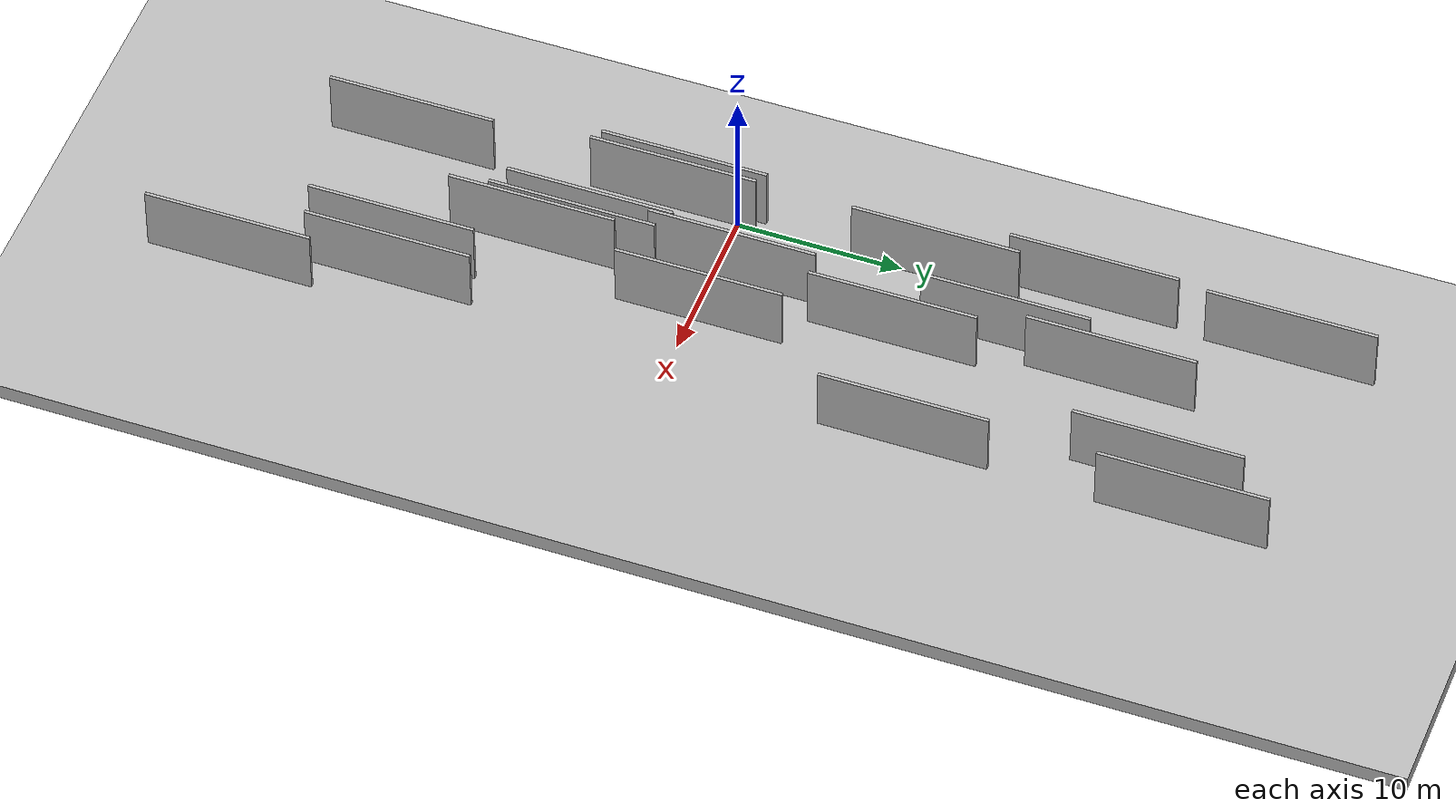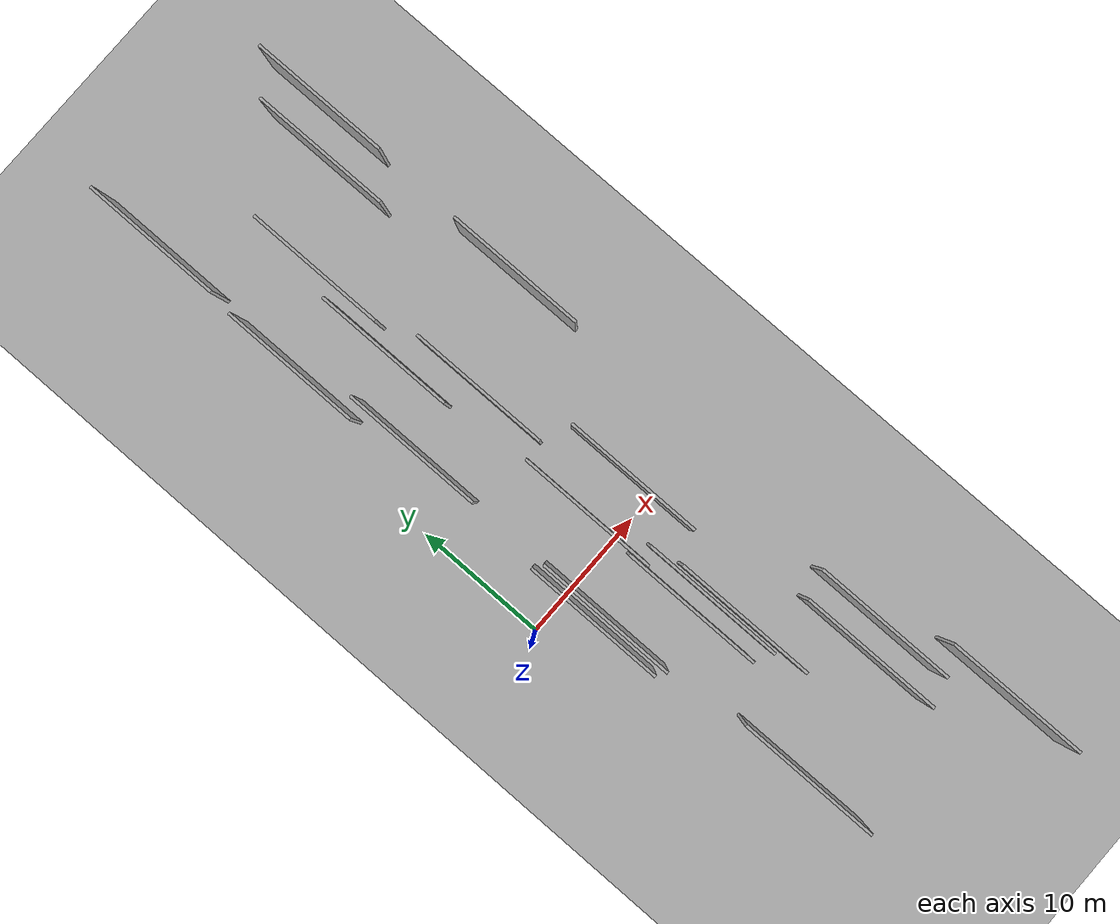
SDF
<?xml version="1.0" encoding="utf-8"?>

<sdf version="1.6">

   <world name="default">

      <gui fullscreen="0">

         <camera name="user_camera">

            <pose>-15 0 4.57585 0 0 0</pose>

            <view_controller>orbit</view_controller>

         </camera>

      </gui>

      <scene>

         <sky>

           <clouds>

             <speed>12</speed>

           </clouds>

         </sky>

         <ambient>0.4 0.4 0.4 1</ambient>

         <background>0.7 0.7 0.7 1</background>

         <shadows>1</shadows>

      </scene>

      <gravity>0 0 -9.8066</gravity>

      <magnetic_field>6e-06 2.3e-05 -4.2e-05</magnetic_field>

      <physics default="0" name="default_physics" type="ode">

         <ode>

            <solver>

               <type>quick</type>

               <iters>10</iters>

               <sor>1.0</sor>

               <use_dynamic_moi_rescaling>0</use_dynamic_moi_rescaling>

            </solver>

            <constraints>

               <cfm>0</cfm>

               <erp>0.2</erp>

               <contact_max_correcting_vel>100</contact_max_correcting_vel>

               <contact_surface_layer>0.001</contact_surface_layer>

            </constraints>

         </ode>

         <max_step_size>0.004</max_step_size>

         <real_time_factor>1</real_time_factor>

         <real_time_update_rate>250</real_time_update_rate>

      </physics>

      <light name="sun" type="directional">

         <cast_shadows>1</cast_shadows>

         <pose>0 0 10 0 0 0</pose>

         <diffuse>0.8 0.8 0.8 1</diffuse>

         <specular>0.2 0.2 0.2 1</specular>

         <attenuation>

            <range>1000</range>

            <constant>0.9</constant>

            <linear>0.01</linear>

            <quadratic>0.001</quadratic>

         </attenuation>

         <direction>-0.5 0.1 -0.9</direction>

      </light>

      <include>

         <name>ground_plane_1</name>

         <uri>model://HANNAS_ground_plane</uri>

         <pose>0 0 0  0 0 0</pose>

      </include>

      <include>

         <name>ground_plane_2</name>

         <uri>model://HANNAS_ground_plane</uri>

         <pose>100 0 0  0 0 0</pose>

      </include>

      <model name="HANNAS_wall_1">

         <static>1</static>

         <pose frame="">9.7893 12.7815 5.0 0.000000 0.000000 1.570796</pose>

         <link name="link">

            <pose frame="">0 0 2.00 0 0 0</pose>

            <collision name="collision">

               <geometry>

                  <box>

                     <size>10.00 0.2 4.00</size>

                  </box>

               </geometry>

               <max_contacts>10</max_contacts>

               <surface>

                  <contact>

                     <ode/>

                  </contact>

                  <bounce/>

                  <friction>

                     <torsional>

                        <ode/>

                     </torsional>

                     <ode/>

                  </friction>

               </surface>

            </collision>

            <visual name="visual">

               <cast_shadows>0</cast_shadows>

               <geometry>

                  <box>

                     <size>10.00 0.2 4.00</size>

                  </box>

               </geometry>

               <material>

                  <script>

                     <uri>model://HANNAS_wall/materials/scripts</uri>

                     <uri>model://HANNAS_wall/materials/textures</uri>

                     <name>vrc/HANNAS_wall</name>

                  </script>

               </material>

            </visual>

            <self_collide>0</self_collide>

            <enable_wind>0</enable_wind>

            <kinematic>0</kinematic>

         </link>

      </model>

      <model name="HANNAS_wall_2">

         <static>1</static>

         <pose frame="">9.3896 -6.5230 5.0 0.000000 0.000000 1.570796</pose>

         <link name="link">

            <pose frame="">0 0 2.00 0 0 0</pose>

            <collision name="collision">

               <geometry>

                  <box>

                     <size>10.00 0.2 4.00</size>

                  </box>

               </geometry>

               <max_contacts>10</max_contacts>

               <surface>

                  <contact>

                     <ode/>

                  </contact>

                  <bounce/>

                  <friction>

                     <torsional>

                        <ode/>

                     </torsional>

                     <ode/>

                  </friction>

               </surface>

            </collision>

            <visual name="visual">

               <cast_shadows>0</cast_shadows>

               <geometry>

                  <box>

                     <size>10.00 0.2 4.00</size>

                  </box>

               </geometry>

               <material>

                  <script>

                     <uri>model://HANNAS_wall/materials/scripts</uri>

                     <uri>model://HANNAS_wall/materials/textures</uri>

                     <name>vrc/HANNAS_wall</name>

                  </script>

               </material>

            </visual>

            <self_collide>0</self_collide>

            <enable_wind>0</enable_wind>

            <kinematic>0</kinematic>

         </link>

      </model>

      <model name="HANNAS_wall_3">

         <static>1</static>

         <pose frame="">3.4801 34.1478 5.0 0.000000 0.000000 1.570796</pose>

         <link name="link">

            <pose frame="">0 0 2.00 0 0 0</pose>

            <collision name="collision">

               <geometry>

                  <box>

                     <size>10.00 0.2 4.00</size>

                  </box>

               </geometry>

               <max_contacts>10</max_contacts>

               <surface>

                  <contact>

                     <ode/>

                  </contact>

                  <bounce/>

                  <friction>

                     <torsional>

                        <ode/>

                     </torsional>

                     <ode/>

                  </friction>

               </surface>

            </collision>

            <visual name="visual">

               <cast_shadows>0</cast_shadows>

               <geometry>

                  <box>

                     <size>10.00 0.2 4.00</size>

                  </box>

               </geometry>

               <material>

                  <script>

                     <uri>model://HANNAS_wall/materials/scripts</uri>

                     <uri>model://HANNAS_wall/materials/textures</uri>

                     <name>vrc/HANNAS_wall</name>

                  </script>

               </material>

            </visual>

            <self_collide>0</self_collide>

            <enable_wind>0</enable_wind>

            <kinematic>0</kinematic>

         </link>

      </model>

      <model name="HANNAS_wall_4">

         <static>1</static>

         <pose frame="">3.6073 -1.9152 5.0 0.000000 0.000000 1.570796</pose>

         <link name="link">

            <pose frame="">0 0 2.00 0 0 0</pose>

            <collision name="collision">

               <geometry>

                  <box>

                     <size>10.00 0.2 4.00</size>

                  </box>

               </geometry>

               <max_contacts>10</max_contacts>

               <surface>

                  <contact>

                     <ode/>

                  </contact>

                  <bounce/>

                  <friction>

                     <torsional>

                        <ode/>

                     </torsional>

                     <ode/>

                  </friction>

               </surface>

            </collision>

            <visual name="visual">

               <cast_shadows>0</cast_shadows>

               <geometry>

                  <box>

                     <size>10.00 0.2 4.00</size>

                  </box>

               </geometry>

               <material>

                  <script>

                     <uri>model://HANNAS_wall/materials/scripts</uri>

                     <uri>model://HANNAS_wall/materials/textures</uri>

                     <name>vrc/HANNAS_wall</name>

                  </script>

               </material>

            </visual>

            <self_collide>0</self_collide>

            <enable_wind>0</enable_wind>

            <kinematic>0</kinematic>

         </link>

      </model>

      <model name="HANNAS_wall_5">

         <static>1</static>

         <pose frame="">8.4005 2.7247 5.0 0.000000 0.000000 1.570796</pose>

         <link name="link">

            <pose frame="">0 0 2.00 0 0 0</pose>

            <collision name="collision">

               <geometry>

                  <box>

                     <size>10.00 0.2 4.00</size>

                  </box>

               </geometry>

               <max_contacts>10</max_contacts>

               <surface>

                  <contact>

                     <ode/>

                  </contact>

                  <bounce/>

                  <friction>

                     <torsional>

                        <ode/>

                     </torsional>

                     <ode/>

                  </friction>

               </surface>

            </collision>

            <visual name="visual">

               <cast_shadows>0</cast_shadows>

               <geometry>

                  <box>

                     <size>10.00 0.2 4.00</size>

                  </box>

               </geometry>

               <material>

                  <script>

                     <uri>model://HANNAS_wall/materials/scripts</uri>

                     <uri>model://HANNAS_wall/materials/textures</uri>

                     <name>vrc/HANNAS_wall</name>

                  </script>

               </material>

            </visual>

            <self_collide>0</self_collide>

            <enable_wind>0</enable_wind>

            <kinematic>0</kinematic>

         </link>

      </model>

      <model name="HANNAS_wall_6">

         <static>1</static>

         <pose frame="">16.9744 32.1979 5.0 0.000000 0.000000 1.570796</pose>

         <link name="link">

            <pose frame="">0 0 2.00 0 0 0</pose>

            <collision name="collision">

               <geometry>

                  <box>

                     <size>10.00 0.2 4.00</size>

                  </box>

               </geometry>

               <max_contacts>10</max_contacts>

               <surface>

                  <contact>

                     <ode/>

                  </contact>

                  <bounce/>

                  <friction>

                     <torsional>

                        <ode/>

                     </torsional>

                     <ode/>

                  </friction>

               </surface>

            </collision>

            <visual name="visual">

               <cast_shadows>0</cast_shadows>

               <geometry>

                  <box>

                     <size>10.00 0.2 4.00</size>

                  </box>

               </geometry>

               <material>

                  <script>

                     <uri>model://HANNAS_wall/materials/scripts</uri>

                     <uri>model://HANNAS_wall/materials/textures</uri>

                     <name>vrc/HANNAS_wall</name>

                  </script>

               </material>

            </visual>

            <self_collide>0</self_collide>

            <enable_wind>0</enable_wind>

            <kinematic>0</kinematic>

         </link>

      </model>

      <model name="HANNAS_wall_7">

         <static>1</static>

         <pose frame="">3.2066 22.4412 5.0 0.000000 0.000000 1.570796</pose>

         <link name="link">

            <pose frame="">0 0 2.00 0 0 0</pose>

            <collision name="collision">

               <geometry>

                  <box>

                     <size>10.00 0.2 4.00</size>

                  </box>

               </geometry>

               <max_contacts>10</max_contacts>

               <surface>

                  <contact>

                     <ode/>

                  </contact>

                  <bounce/>

                  <friction>

                     <torsional>

                        <ode/>

                     </torsional>

                     <ode/>

                  </friction>

               </surface>

            </collision>

            <visual name="visual">

               <cast_shadows>0</cast_shadows>

               <geometry>

                  <box>

                     <size>10.00 0.2 4.00</size>

                  </box>

               </geometry>

               <material>

                  <script>

                     <uri>model://HANNAS_wall/materials/scripts</uri>

                     <uri>model://HANNAS_wall/materials/textures</uri>

                     <name>vrc/HANNAS_wall</name>

                  </script>

               </material>

            </visual>

            <self_collide>0</self_collide>

            <enable_wind>0</enable_wind>

            <kinematic>0</kinematic>

         </link>

      </model>

      <model name="HANNAS_wall_8">

         <static>1</static>

         <pose frame="">9.7941 -8.7824 5.0 0.000000 0.000000 1.570796</pose>

         <link name="link">

            <pose frame="">0 0 2.00 0 0 0</pose>

            <collision name="collision">

               <geometry>

                  <box>

                     <size>10.00 0.2 4.00</size>

                  </box>

               </geometry>

               <max_contacts>10</max_contacts>

               <surface>

                  <contact>

                     <ode/>

                  </contact>

                  <bounce/>

                  <friction>

                     <torsional>

                        <ode/>

                     </torsional>

                     <ode/>

                  </friction>

               </surface>

            </collision>

            <visual name="visual">

               <cast_shadows>0</cast_shadows>

               <geometry>

                  <box>

                     <size>10.00 0.2 4.00</size>

                  </box>

               </geometry>

               <material>

                  <script>

                     <uri>model://HANNAS_wall/materials/scripts</uri>

                     <uri>model://HANNAS_wall/materials/textures</uri>

                     <name>vrc/HANNAS_wall</name>

                  </script>

               </material>

            </visual>

            <self_collide>0</self_collide>

            <enable_wind>0</enable_wind>

            <kinematic>0</kinematic>

         </link>

      </model>

      <model name="HANNAS_wall_9">

         <static>1</static>

         <pose frame="">14.5233 29.9534 5.0 0.000000 0.000000 1.570796</pose>

         <link name="link">

            <pose frame="">0 0 2.00 0 0 0</pose>

            <collision name="collision">

               <geometry>

                  <box>

                     <size>10.00 0.2 4.00</size>

                  </box>

               </geometry>

               <max_contacts>10</max_contacts>

               <surface>

                  <contact>

                     <ode/>

                  </contact>

                  <bounce/>

                  <friction>

                     <torsional>

                        <ode/>

                     </torsional>

                     <ode/>

                  </friction>

               </surface>

            </collision>

            <visual name="visual">

               <cast_shadows>0</cast_shadows>

               <geometry>

                  <box>

                     <size>10.00 0.2 4.00</size>

                  </box>

               </geometry>

               <material>

                  <script>

                     <uri>model://HANNAS_wall/materials/scripts</uri>

                     <uri>model://HANNAS_wall/materials/textures</uri>

                     <name>vrc/HANNAS_wall</name>

                  </script>

               </material>

            </visual>

            <self_collide>0</self_collide>

            <enable_wind>0</enable_wind>

            <kinematic>0</kinematic>

         </link>

      </model>

      <model name="HANNAS_wall_10">

         <static>1</static>

         <pose frame="">16.9770 -24.3472 5.0 0.000000 0.000000 1.570796</pose>

         <link name="link">

            <pose frame="">0 0 2.00 0 0 0</pose>

            <collision name="collision">

               <geometry>

                  <box>

                     <size>10.00 0.2 4.00</size>

                  </box>

               </geometry>

               <max_contacts>10</max_contacts>

               <surface>

                  <contact>

                     <ode/>

                  </contact>

                  <bounce/>

                  <friction>

                     <torsional>

                        <ode/>

                     </torsional>

                     <ode/>

                  </friction>

               </surface>

            </collision>

            <visual name="visual">

               <cast_shadows>0</cast_shadows>

               <geometry>

                  <box>

                     <size>10.00 0.2 4.00</size>

                  </box>

               </geometry>

               <material>

                  <script>

                     <uri>model://HANNAS_wall/materials/scripts</uri>

                     <uri>model://HANNAS_wall/materials/textures</uri>

                     <name>vrc/HANNAS_wall</name>

                  </script>

               </material>

            </visual>

            <self_collide>0</self_collide>

            <enable_wind>0</enable_wind>

            <kinematic>0</kinematic>

         </link>

      </model>

      <model name="HANNAS_wall_11">

         <static>1</static>

         <pose frame="">15.1796 -15.4007 5.0 0.000000 0.000000 1.570796</pose>

         <link name="link">

            <pose frame="">0 0 2.00 0 0 0</pose>

            <collision name="collision">

               <geometry>

                  <box>

                     <size>10.00 0.2 4.00</size>

                  </box>

               </geometry>

               <max_contacts>10</max_contacts>

               <surface>

                  <contact>

                     <ode/>

                  </contact>

                  <bounce/>

                  <friction>

                     <torsional>

                        <ode/>

                     </torsional>

                     <ode/>

                  </friction>

               </surface>

            </collision>

            <visual name="visual">

               <cast_shadows>0</cast_shadows>

               <geometry>

                  <box>

                     <size>10.00 0.2 4.00</size>

                  </box>

               </geometry>

               <material>

                  <script>

                     <uri>model://HANNAS_wall/materials/scripts</uri>

                     <uri>model://HANNAS_wall/materials/textures</uri>

                     <name>vrc/HANNAS_wall</name>

                  </script>

               </material>

            </visual>

            <self_collide>0</self_collide>

            <enable_wind>0</enable_wind>

            <kinematic>0</kinematic>

         </link>

      </model>

      <model name="HANNAS_wall_12">

         <static>1</static>

         <pose frame="">8.7573 25.3072 5.0 0.000000 0.000000 1.570796</pose>

         <link name="link">

            <pose frame="">0 0 2.00 0 0 0</pose>

            <collision name="collision">

               <geometry>

                  <box>

                     <size>10.00 0.2 4.00</size>

                  </box>

               </geometry>

               <max_contacts>10</max_contacts>

               <surface>

                  <contact>

                     <ode/>

                  </contact>

                  <bounce/>

                  <friction>

                     <torsional>

                        <ode/>

                     </torsional>

                     <ode/>

                  </friction>

               </surface>

            </collision>

            <visual name="visual">

               <cast_shadows>0</cast_shadows>

               <geometry>

                  <box>

                     <size>10.00 0.2 4.00</size>

                  </box>

               </geometry>

               <material>

                  <script>

                     <uri>model://HANNAS_wall/materials/scripts</uri>

                     <uri>model://HANNAS_wall/materials/textures</uri>

                     <name>vrc/HANNAS_wall</name>

                  </script>

               </material>

            </visual>

            <self_collide>0</self_collide>

            <enable_wind>0</enable_wind>

            <kinematic>0</kinematic>

         </link>

      </model>

      <model name="HANNAS_wall_13">

         <static>1</static>

         <pose frame="">8.1556 -5.9028 5.0 0.000000 0.000000 1.570796</pose>

         <link name="link">

            <pose frame="">0 0 2.00 0 0 0</pose>

            <collision name="collision">

               <geometry>

                  <box>

                     <size>10.00 0.2 4.00</size>

                  </box>

               </geometry>

               <max_contacts>10</max_contacts>

               <surface>

                  <contact>

                     <ode/>

                  </contact>

                  <bounce/>

                  <friction>

                     <torsional>

                        <ode/>

                     </torsional>

                     <ode/>

                  </friction>

               </surface>

            </collision>

            <visual name="visual">

               <cast_shadows>0</cast_shadows>

               <geometry>

                  <box>

                     <size>10.00 0.2 4.00</size>

                  </box>

               </geometry>

               <material>

                  <script>

                     <uri>model://HANNAS_wall/materials/scripts</uri>

                     <uri>model://HANNAS_wall/materials/textures</uri>

                     <name>vrc/HANNAS_wall</name>

                  </script>

               </material>

            </visual>

            <self_collide>0</self_collide>

            <enable_wind>0</enable_wind>

            <kinematic>0</kinematic>

         </link>

      </model>

      <model name="HANNAS_wall_14">

         <static>1</static>

         <pose frame="">4.2770 13.3999 5.0 0.000000 0.000000 1.570796</pose>

         <link name="link">

            <pose frame="">0 0 2.00 0 0 0</pose>

            <collision name="collision">

               <geometry>

                  <box>

                     <size>10.00 0.2 4.00</size>

                  </box>

               </geometry>

               <max_contacts>10</max_contacts>

               <surface>

                  <contact>

                     <ode/>

                  </contact>

                  <bounce/>

                  <friction>

                     <torsional>

                        <ode/>

                     </torsional>

                     <ode/>

                  </friction>

               </surface>

            </collision>

            <visual name="visual">

               <cast_shadows>0</cast_shadows>

               <geometry>

                  <box>

                     <size>10.00 0.2 4.00</size>

                  </box>

               </geometry>

               <material>

                  <script>

                     <uri>model://HANNAS_wall/materials/scripts</uri>

                     <uri>model://HANNAS_wall/materials/textures</uri>

                     <name>vrc/HANNAS_wall</name>

                  </script>

               </material>

            </visual>

            <self_collide>0</self_collide>

            <enable_wind>0</enable_wind>

            <kinematic>0</kinematic>

         </link>

      </model>

      <model name="HANNAS_wall_15">

         <static>1</static>

         <pose frame="">13.2383 -15.9345 5.0 0.000000 0.000000 1.570796</pose>

         <link name="link">

            <pose frame="">0 0 2.00 0 0 0</pose>

            <collision name="collision">

               <geometry>

                  <box>

                     <size>10.00 0.2 4.00</size>

                  </box>

               </geometry>

               <max_contacts>10</max_contacts>

               <surface>

                  <contact>

                     <ode/>

                  </contact>

                  <bounce/>

                  <friction>

                     <torsional>

                        <ode/>

                     </torsional>

                     <ode/>

                  </friction>

               </surface>

            </collision>

            <visual name="visual">

               <cast_shadows>0</cast_shadows>

               <geometry>

                  <box>

                     <size>10.00 0.2 4.00</size>

                  </box>

               </geometry>

               <material>

                  <script>

                     <uri>model://HANNAS_wall/materials/scripts</uri>

                     <uri>model://HANNAS_wall/materials/textures</uri>

                     <name>vrc/HANNAS_wall</name>

                  </script>

               </material>

            </visual>

            <self_collide>0</self_collide>

            <enable_wind>0</enable_wind>

            <kinematic>0</kinematic>

         </link>

      </model>

      <model name="HANNAS_wall_16">

         <static>1</static>

         <pose frame="">7.7320 18.7458 5.0 0.000000 0.000000 1.570796</pose>

         <link name="link">

            <pose frame="">0 0 2.00 0 0 0</pose>

            <collision name="collision">

               <geometry>

                  <box>

                     <size>10.00 0.2 4.00</size>

                  </box>

               </geometry>

               <max_contacts>10</max_contacts>

               <surface>

                  <contact>

                     <ode/>

                  </contact>

                  <bounce/>

                  <friction>

                     <torsional>

                        <ode/>

                     </torsional>

                     <ode/>

                  </friction>

               </surface>

            </collision>

            <visual name="visual">

               <cast_shadows>0</cast_shadows>

               <geometry>

                  <box>

                     <size>10.00 0.2 4.00</size>

                  </box>

               </geometry>

               <material>

                  <script>

                     <uri>model://HANNAS_wall/materials/scripts</uri>

                     <uri>model://HANNAS_wall/materials/textures</uri>

                     <name>vrc/HANNAS_wall</name>

                  </script>

               </material>

            </visual>

            <self_collide>0</self_collide>

            <enable_wind>0</enable_wind>

            <kinematic>0</kinematic>

         </link>

      </model>

      <model name="HANNAS_wall_17">

         <static>1</static>

         <pose frame="">16.7964 15.9017 5.0 0.000000 0.000000 1.570796</pose>

         <link name="link">

            <pose frame="">0 0 2.00 0 0 0</pose>

            <collision name="collision">

               <geometry>

                  <box>

                     <size>10.00 0.2 4.00</size>

                  </box>

               </geometry>

               <max_contacts>10</max_contacts>

               <surface>

                  <contact>

                     <ode/>

                  </contact>

                  <bounce/>

                  <friction>

                     <torsional>

                        <ode/>

                     </torsional>

                     <ode/>

                  </friction>

               </surface>

            </collision>

            <visual name="visual">

               <cast_shadows>0</cast_shadows>

               <geometry>

                  <box>

                     <size>10.00 0.2 4.00</size>

                  </box>

               </geometry>

               <material>

                  <script>

                     <uri>model://HANNAS_wall/materials/scripts</uri>

                     <uri>model://HANNAS_wall/materials/textures</uri>

                     <name>vrc/HANNAS_wall</name>

                  </script>

               </material>

            </visual>

            <self_collide>0</self_collide>

            <enable_wind>0</enable_wind>

            <kinematic>0</kinematic>

         </link>

      </model>

      <model name="HANNAS_wall_18">

         <static>1</static>

         <pose frame="">4.2590 -2.3410 5.0 0.000000 0.000000 1.570796</pose>

         <link name="link">

            <pose frame="">0 0 2.00 0 0 0</pose>

            <collision name="collision">

               <geometry>

                  <box>

                     <size>10.00 0.2 4.00</size>

                  </box>

               </geometry>

               <max_contacts>10</max_contacts>

               <surface>

                  <contact>

                     <ode/>

                  </contact>

                  <bounce/>

                  <friction>

                     <torsional>

                        <ode/>

                     </torsional>

                     <ode/>

                  </friction>

               </surface>

            </collision>

            <visual name="visual">

               <cast_shadows>0</cast_shadows>

               <geometry>

                  <box>

                     <size>10.00 0.2 4.00</size>

                  </box>

               </geometry>

               <material>

                  <script>

                     <uri>model://HANNAS_wall/materials/scripts</uri>

                     <uri>model://HANNAS_wall/materials/textures</uri>

                     <name>vrc/HANNAS_wall</name>

                  </script>

               </material>

            </visual>

            <self_collide>0</self_collide>

            <enable_wind>0</enable_wind>

            <kinematic>0</kinematic>

         </link>

      </model>

      <model name="HANNAS_wall_19">

         <static>1</static>

         <pose frame="">11.8951 2.0215 5.0 0.000000 0.000000 1.570796</pose>

         <link name="link">

            <pose frame="">0 0 2.00 0 0 0</pose>

            <collision name="collision">

               <geometry>

                  <box>

                     <size>10.00 0.2 4.00</size>

                  </box>

               </geometry>

               <max_contacts>10</max_contacts>

               <surface>

                  <contact>

                     <ode/>

                  </contact>

                  <bounce/>

                  <friction>

                     <torsional>

                        <ode/>

                     </torsional>

                     <ode/>

                  </friction>

               </surface>

            </collision>

            <visual name="visual">

               <cast_shadows>0</cast_shadows>

               <geometry>

                  <box>

                     <size>10.00 0.2 4.00</size>

                  </box>

               </geometry>

               <material>

                  <script>

                     <uri>model://HANNAS_wall/materials/scripts</uri>

                     <uri>model://HANNAS_wall/materials/textures</uri>

                     <name>vrc/HANNAS_wall</name>

                  </script>

               </material>

            </visual>

            <self_collide>0</self_collide>

            <enable_wind>0</enable_wind>

            <kinematic>0</kinematic>

         </link>

      </model>

      <model name="HANNAS_wall_20">

         <static>1</static>

         <pose frame="">4.9788 -17.9588 5.0 0.000000 0.000000 1.570796</pose>

         <link name="link">

            <pose frame="">0 0 2.00 0 0 0</pose>

            <collision name="collision">

               <geometry>

                  <box>

                     <size>10.00 0.2 4.00</size>

                  </box>

               </geometry>

               <max_contacts>10</max_contacts>

               <surface>

                  <contact>

                     <ode/>

                  </contact>

                  <bounce/>

                  <friction>

                     <torsional>

                        <ode/>

                     </torsional>

                     <ode/>

                  </friction>

               </surface>

            </collision>

            <visual name="visual">

               <cast_shadows>0</cast_shadows>

               <geometry>

                  <box>

                     <size>10.00 0.2 4.00</size>

                  </box>

               </geometry>

               <material>

                  <script>

                     <uri>model://HANNAS_wall/materials/scripts</uri>

                     <uri>model://HANNAS_wall/materials/textures</uri>

                     <name>vrc/HANNAS_wall</name>

                  </script>

               </material>

            </visual>

            <self_collide>0</self_collide>

            <enable_wind>0</enable_wind>

            <kinematic>0</kinematic>

         </link>

      </model>

   </world>

</sdf>

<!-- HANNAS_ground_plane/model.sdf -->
<sdf version="1.4">
<model name="HANNAS_ground_plane">
  <static>true</static>
    <link name="link">
      <collision name="collision">
        <geometry>
          <plane>
            <normal>0 0 1</normal>
            <size>1000 1000</size>
          </plane>
        </geometry>
        <surface>
          <friction>
            <ode>
              <mu>100</mu>
              <mu2>50</mu2>
            </ode>
          </friction>
        </surface>
      </collision>
      <visual name="visual">
        <cast_shadows>false</cast_shadows>
        <geometry>
          <plane>
            <normal>0 0 1</normal>
            <size>1000 1000</size>
          </plane>
        </geometry>
        <material>
          <script>
            <uri>model://HANNAS_ground_plane/materials/scripts/HANNAS_ground_plane.material</uri>
	    <uri>model://HANNAS_ground_plane/materials/textures</uri>
            <name>HANNASGroundPlane/Image</name>
          </script>
        </material>
      </visual>
    </link>
  </model>
</sdf>
